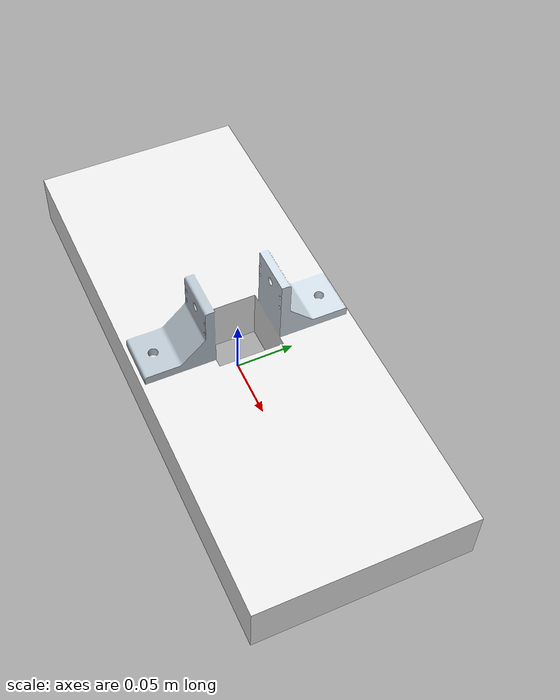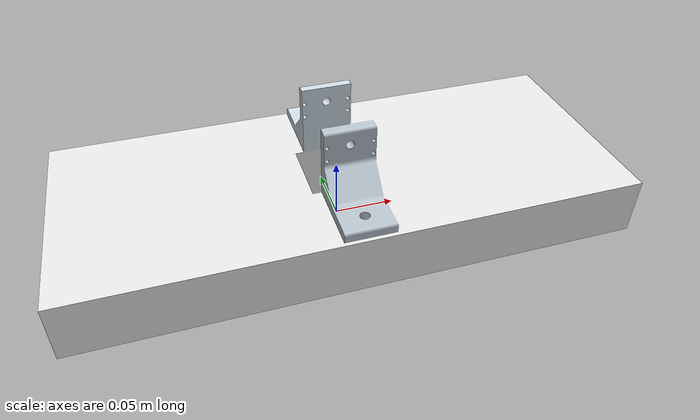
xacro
<?xml version="1.0"?>
<robot name="manipulador_base" xmlns:xacro="http://ros.org/wiki/xacro">

  <!--Base_to_manipulator-->
    <link name="base_to_manipulator">
      <visual>
        <origin rpy="0 0 0" xyz="0 0 0"/>
        <geometry>
          <mesh filename="package://manipulator_description/meshes/basem.dae"/>
        </geometry>
      </visual>
      <collision>
        <origin rpy="0 0 0" xyz="0 0 0"/>
        <geometry>
          <mesh filename="package://manipulator_description/meshes/basem.stl"/>
        </geometry>
      </collision>
      <inertial>
        <origin rpy="0 0 0" xyz="0 0 0"/>
        <mass value="1000.86661792"/>
        <inertia ixx="8.72078676e-1" ixy="-9.55785583e-7" ixz="0" iyx="-9.55785583e-7" iyy="4.66430350" iyz="0" izx="0" izy="-0" izz="5.35109282"/>
      </inertial>
    </link>
</robot>
